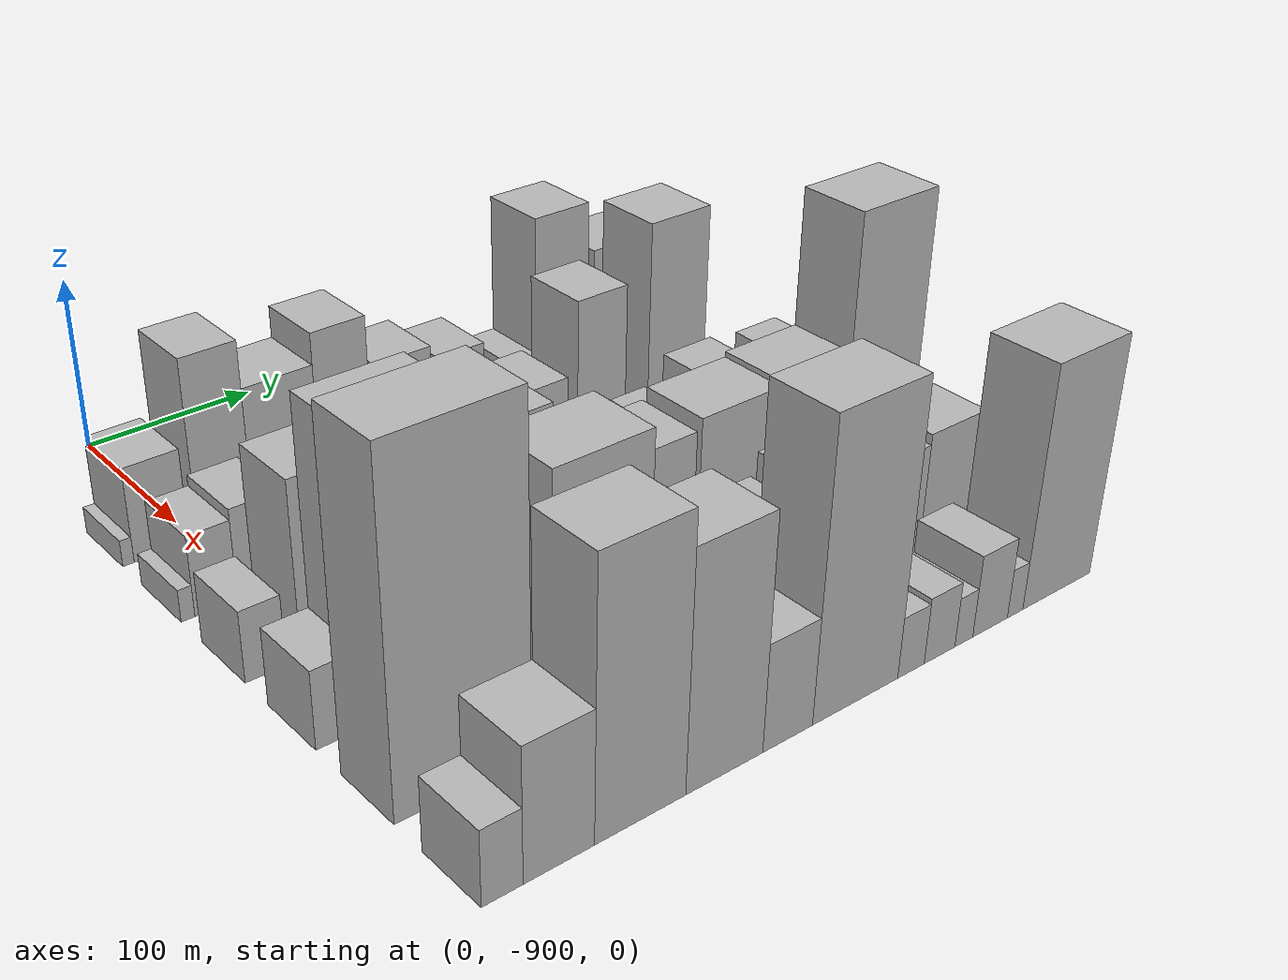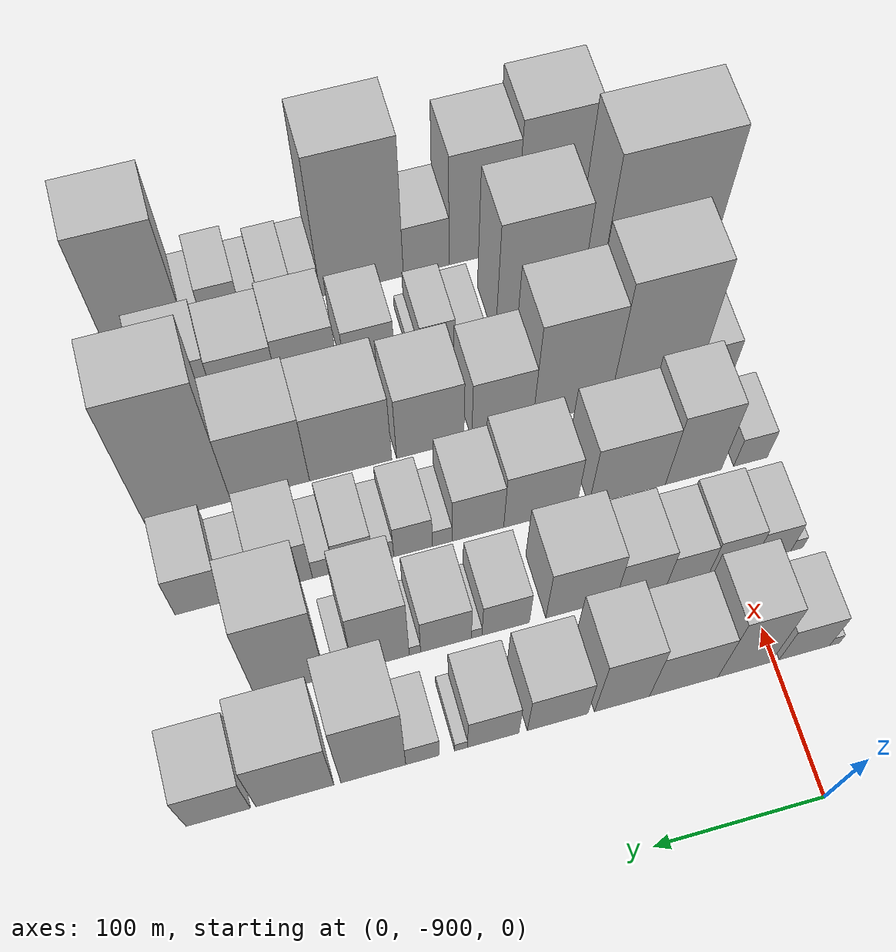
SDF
<sdf version="1.6">
 <world name="default">
  <model name="building_1">
   <static>1</static>
   <pose>100.0000 -936.9196 0 0.000000 0.000000 0.000000</pose>
   <link name="link">
    <pose>0 0 7.50 0 0 0</pose>
    <collision name="collision"><geometry><box><size>40.0000 6.1608 15.0000</size></box></geometry></collision>
    <visual name="visual">
     <cast_shadows>0</cast_shadows>
     <geometry><box><size>40.0000 6.1608 15.0000</size></box></geometry>
     <material>
      <script>
       <uri>model://HANNAS_wall/materials/scripts</uri>
       <uri>model://HANNAS_wall/materials/textures</uri>
       <name>vrc/HANNAS_wall</name>
      </script>
     </material>
    </visual>
   </link>
  </model>
  <model name="building_2">
   <static>1</static>
   <pose>100.0000 -918.4196 0 0.000000 0.000000 0.000000</pose>
   <link name="link">
    <pose>0 0 27.00 0 0 0</pose>
    <collision name="collision"><geometry><box><size>40.0000 30.8391 54.0000</size></box></geometry></collision>
    <visual name="visual">
     <cast_shadows>0</cast_shadows>
     <geometry><box><size>40.0000 30.8391 54.0000</size></box></geometry>
     <material>
      <script>
       <uri>model://HANNAS_wall/materials/scripts</uri>
       <uri>model://HANNAS_wall/materials/textures</uri>
       <name>vrc/HANNAS_wall</name>
      </script>
     </material>
    </visual>
   </link>
  </model>
  <model name="building_3">
   <static>1</static>
   <pose>100.0000 -881.9433 0 0.000000 0.000000 0.000000</pose>
   <link name="link">
    <pose>0 0 51.00 0 0 0</pose>
    <collision name="collision"><geometry><box><size>40.0000 32.1136 102.0000</size></box></geometry></collision>
    <visual name="visual">
     <cast_shadows>0</cast_shadows>
     <geometry><box><size>40.0000 32.1136 102.0000</size></box></geometry>
     <material>
      <script>
       <uri>model://HANNAS_wall/materials/scripts</uri>
       <uri>model://HANNAS_wall/materials/textures</uri>
       <name>vrc/HANNAS_wall</name>
      </script>
     </material>
    </visual>
   </link>
  </model>
  <model name="building_4">
   <static>1</static>
   <pose>100.0000 -845.3050 0 0.000000 0.000000 0.000000</pose>
   <link name="link">
    <pose>0 0 37.50 0 0 0</pose>
    <collision name="collision"><geometry><box><size>40.0000 41.1630 75.0000</size></box></geometry></collision>
    <visual name="visual">
     <cast_shadows>0</cast_shadows>
     <geometry><box><size>40.0000 41.1630 75.0000</size></box></geometry>
     <material>
      <script>
       <uri>model://HANNAS_wall/materials/scripts</uri>
       <uri>model://HANNAS_wall/materials/textures</uri>
       <name>vrc/HANNAS_wall</name>
      </script>
     </material>
    </visual>
   </link>
  </model>
  <model name="building_5">
   <static>1</static>
   <pose>100.0000 -808.3368 0 0.000000 0.000000 0.000000</pose>
   <link name="link">
    <pose>0 0 46.50 0 0 0</pose>
    <collision name="collision"><geometry><box><size>40.0000 32.7734 93.0000</size></box></geometry></collision>
    <visual name="visual">
     <cast_shadows>0</cast_shadows>
     <geometry><box><size>40.0000 32.7734 93.0000</size></box></geometry>
     <material>
      <script>
       <uri>model://HANNAS_wall/materials/scripts</uri>
       <uri>model://HANNAS_wall/materials/textures</uri>
       <name>vrc/HANNAS_wall</name>
      </script>
     </material>
    </visual>
   </link>
  </model>
  <model name="building_6">
   <static>1</static>
   <pose>100.0000 -770.1208 0 0.000000 0.000000 0.000000</pose>
   <link name="link">
    <pose>0 0 31.50 0 0 0</pose>
    <collision name="collision"><geometry><box><size>40.0000 35.6585 63.0000</size></box></geometry></collision>
    <visual name="visual">
     <cast_shadows>0</cast_shadows>
     <geometry><box><size>40.0000 35.6585 63.0000</size></box></geometry>
     <material>
      <script>
       <uri>model://HANNAS_wall/materials/scripts</uri>
       <uri>model://HANNAS_wall/materials/textures</uri>
       <name>vrc/HANNAS_wall</name>
      </script>
     </material>
    </visual>
   </link>
  </model>
  <model name="building_7">
   <static>1</static>
   <pose>100.0000 -732.2711 0 0.000000 0.000000 0.000000</pose>
   <link name="link">
    <pose>0 0 27.00 0 0 0</pose>
    <collision name="collision"><geometry><box><size>40.0000 30.0410 54.0000</size></box></geometry></collision>
    <visual name="visual">
     <cast_shadows>0</cast_shadows>
     <geometry><box><size>40.0000 30.0410 54.0000</size></box></geometry>
     <material>
      <script>
       <uri>model://HANNAS_wall/materials/scripts</uri>
       <uri>model://HANNAS_wall/materials/textures</uri>
       <name>vrc/HANNAS_wall</name>
      </script>
     </material>
    </visual>
   </link>
  </model>
  <model name="building_8">
   <static>1</static>
   <pose>100.0000 -713.5955 0 0.000000 0.000000 0.000000</pose>
   <link name="link">
    <pose>0 0 7.50 0 0 0</pose>
    <collision name="collision"><geometry><box><size>40.0000 7.3101 15.0000</size></box></geometry></collision>
    <visual name="visual">
     <cast_shadows>0</cast_shadows>
     <geometry><box><size>40.0000 7.3101 15.0000</size></box></geometry>
     <material>
      <script>
       <uri>model://HANNAS_wall/materials/scripts</uri>
       <uri>model://HANNAS_wall/materials/textures</uri>
       <name>vrc/HANNAS_wall</name>
      </script>
     </material>
    </visual>
   </link>
  </model>
  <model name="building_9">
   <static>1</static>
   <pose>100.0000 -691.2593 0 0.000000 0.000000 0.000000</pose>
   <link name="link">
    <pose>0 0 18.00 0 0 0</pose>
    <collision name="collision"><geometry><box><size>40.0000 19.3624 36.0000</size></box></geometry></collision>
    <visual name="visual">
     <cast_shadows>0</cast_shadows>
     <geometry><box><size>40.0000 19.3624 36.0000</size></box></geometry>
     <material>
      <script>
       <uri>model://HANNAS_wall/materials/scripts</uri>
       <uri>model://HANNAS_wall/materials/textures</uri>
       <name>vrc/HANNAS_wall</name>
      </script>
     </material>
    </visual>
   </link>
  </model>
  <model name="building_10">
   <static>1</static>
   <pose>100.0000 -662.9509 0 0.000000 0.000000 0.000000</pose>
   <link name="link">
    <pose>0 0 58.50 0 0 0</pose>
    <collision name="collision"><geometry><box><size>40.0000 37.2543 117.0000</size></box></geometry></collision>
    <visual name="visual">
     <cast_shadows>0</cast_shadows>
     <geometry><box><size>40.0000 37.2543 117.0000</size></box></geometry>
     <material>
      <script>
       <uri>model://HANNAS_wall/materials/scripts</uri>
       <uri>model://HANNAS_wall/materials/textures</uri>
       <name>vrc/HANNAS_wall</name>
      </script>
     </material>
    </visual>
   </link>
  </model>
  <model name="building_11">
   <static>1</static>
   <pose>100.0000 -618.1327 0 0.000000 0.000000 0.000000</pose>
   <link name="link">
    <pose>0 0 43.50 0 0 0</pose>
    <collision name="collision"><geometry><box><size>40.0000 44.3821 87.0000</size></box></geometry></collision>
    <visual name="visual">
     <cast_shadows>0</cast_shadows>
     <geometry><box><size>40.0000 44.3821 87.0000</size></box></geometry>
     <material>
      <script>
       <uri>model://HANNAS_wall/materials/scripts</uri>
       <uri>model://HANNAS_wall/materials/textures</uri>
       <name>vrc/HANNAS_wall</name>
      </script>
     </material>
    </visual>
   </link>
  </model>
  <model name="building_12">
   <static>1</static>
   <pose>100.0000 -574.7860 0 0.000000 0.000000 0.000000</pose>
   <link name="link">
    <pose>0 0 31.50 0 0 0</pose>
    <collision name="collision"><geometry><box><size>40.0000 36.3113 63.0000</size></box></geometry></collision>
    <visual name="visual">
     <cast_shadows>0</cast_shadows>
     <geometry><box><size>40.0000 36.3113 63.0000</size></box></geometry>
     <material>
      <script>
       <uri>model://HANNAS_wall/materials/scripts</uri>
       <uri>model://HANNAS_wall/materials/textures</uri>
       <name>vrc/HANNAS_wall</name>
      </script>
     </material>
    </visual>
   </link>
  </model>
  <model name="building_63">
   <static>1</static>
   <pose>160.0000 -936.3375 0 0.000000 0.000000 0.000000</pose>
   <link name="link">
    <pose>0 0 9.00 0 0 0</pose>
    <collision name="collision"><geometry><box><size>40.0000 7.3250 18.0000</size></box></geometry></collision>
    <visual name="visual">
     <cast_shadows>0</cast_shadows>
     <geometry><box><size>40.0000 7.3250 18.0000</size></box></geometry>
     <material>
      <script>
       <uri>model://HANNAS_wall/materials/scripts</uri>
       <uri>model://HANNAS_wall/materials/textures</uri>
       <name>vrc/HANNAS_wall</name>
      </script>
     </material>
    </visual>
   </link>
  </model>
  <model name="building_64">
   <static>1</static>
   <pose>160.0000 -921.1108 0 0.000000 0.000000 0.000000</pose>
   <link name="link">
    <pose>0 0 22.50 0 0 0</pose>
    <collision name="collision"><geometry><box><size>40.0000 23.1285 45.0000</size></box></geometry></collision>
    <visual name="visual">
     <cast_shadows>0</cast_shadows>
     <geometry><box><size>40.0000 23.1285 45.0000</size></box></geometry>
     <material>
      <script>
       <uri>model://HANNAS_wall/materials/scripts</uri>
       <uri>model://HANNAS_wall/materials/textures</uri>
       <name>vrc/HANNAS_wall</name>
      </script>
     </material>
    </visual>
   </link>
  </model>
  <model name="building_65">
   <static>1</static>
   <pose>160.0000 -895.6617 0 0.000000 0.000000 0.000000</pose>
   <link name="link">
    <pose>0 0 25.50 0 0 0</pose>
    <collision name="collision"><geometry><box><size>40.0000 27.7697 51.0000</size></box></geometry></collision>
    <visual name="visual">
     <cast_shadows>0</cast_shadows>
     <geometry><box><size>40.0000 27.7697 51.0000</size></box></geometry>
     <material>
      <script>
       <uri>model://HANNAS_wall/materials/scripts</uri>
       <uri>model://HANNAS_wall/materials/textures</uri>
       <name>vrc/HANNAS_wall</name>
      </script>
     </material>
    </visual>
   </link>
  </model>
  <model name="building_66">
   <static>1</static>
   <pose>160.0000 -868.6997 0 0.000000 0.000000 0.000000</pose>
   <link name="link">
    <pose>0 0 22.50 0 0 0</pose>
    <collision name="collision"><geometry><box><size>40.0000 26.1543 45.0000</size></box></geometry></collision>
    <visual name="visual">
     <cast_shadows>0</cast_shadows>
     <geometry><box><size>40.0000 26.1543 45.0000</size></box></geometry>
     <material>
      <script>
       <uri>model://HANNAS_wall/materials/scripts</uri>
       <uri>model://HANNAS_wall/materials/textures</uri>
       <name>vrc/HANNAS_wall</name>
      </script>
     </material>
    </visual>
   </link>
  </model>
  <model name="building_67">
   <static>1</static>
   <pose>160.0000 -840.0331 0 0.000000 0.000000 0.000000</pose>
   <link name="link">
    <pose>0 0 28.50 0 0 0</pose>
    <collision name="collision"><geometry><box><size>40.0000 31.1788 57.0000</size></box></geometry></collision>
    <visual name="visual">
     <cast_shadows>0</cast_shadows>
     <geometry><box><size>40.0000 31.1788 57.0000</size></box></geometry>
     <material>
      <script>
       <uri>model://HANNAS_wall/materials/scripts</uri>
       <uri>model://HANNAS_wall/materials/textures</uri>
       <name>vrc/HANNAS_wall</name>
      </script>
     </material>
    </visual>
   </link>
  </model>
  <model name="building_68">
   <static>1</static>
   <pose>160.0000 -803.0409 0 0.000000 0.000000 0.000000</pose>
   <link name="link">
    <pose>0 0 37.50 0 0 0</pose>
    <collision name="collision"><geometry><box><size>40.0000 42.8056 75.0000</size></box></geometry></collision>
    <visual name="visual">
     <cast_shadows>0</cast_shadows>
     <geometry><box><size>40.0000 42.8056 75.0000</size></box></geometry>
     <material>
      <script>
       <uri>model://HANNAS_wall/materials/scripts</uri>
       <uri>model://HANNAS_wall/materials/textures</uri>
       <name>vrc/HANNAS_wall</name>
      </script>
     </material>
    </visual>
   </link>
  </model>
  <model name="building_69">
   <static>1</static>
   <pose>160.0000 -757.3831 0 0.000000 0.000000 0.000000</pose>
   <link name="link">
    <pose>0 0 25.50 0 0 0</pose>
    <collision name="collision"><geometry><box><size>40.0000 28.5100 51.0000</size></box></geometry></collision>
    <visual name="visual">
     <cast_shadows>0</cast_shadows>
     <geometry><box><size>40.0000 28.5100 51.0000</size></box></geometry>
     <material>
      <script>
       <uri>model://HANNAS_wall/materials/scripts</uri>
       <uri>model://HANNAS_wall/materials/textures</uri>
       <name>vrc/HANNAS_wall</name>
      </script>
     </material>
    </visual>
   </link>
  </model>
  <model name="building_70">
   <static>1</static>
   <pose>160.0000 -739.9512 0 0.000000 0.000000 0.000000</pose>
   <link name="link">
    <pose>0 0 7.50 0 0 0</pose>
    <collision name="collision"><geometry><box><size>40.0000 6.3539 15.0000</size></box></geometry></collision>
    <visual name="visual">
     <cast_shadows>0</cast_shadows>
     <geometry><box><size>40.0000 6.3539 15.0000</size></box></geometry>
     <material>
      <script>
       <uri>model://HANNAS_wall/materials/scripts</uri>
       <uri>model://HANNAS_wall/materials/textures</uri>
       <name>vrc/HANNAS_wall</name>
      </script>
     </material>
    </visual>
   </link>
  </model>
  <model name="building_71">
   <static>1</static>
   <pose>160.0000 -721.6589 0 0.000000 0.000000 0.000000</pose>
   <link name="link">
    <pose>0 0 27.00 0 0 0</pose>
    <collision name="collision"><geometry><box><size>40.0000 30.2306 54.0000</size></box></geometry></collision>
    <visual name="visual">
     <cast_shadows>0</cast_shadows>
     <geometry><box><size>40.0000 30.2306 54.0000</size></box></geometry>
     <material>
      <script>
       <uri>model://HANNAS_wall/materials/scripts</uri>
       <uri>model://HANNAS_wall/materials/textures</uri>
       <name>vrc/HANNAS_wall</name>
      </script>
     </material>
    </visual>
   </link>
  </model>
  <model name="building_72">
   <static>1</static>
   <pose>160.0000 -703.1885 0 0.000000 0.000000 0.000000</pose>
   <link name="link">
    <pose>0 0 7.50 0 0 0</pose>
    <collision name="collision"><geometry><box><size>40.0000 6.7102 15.0000</size></box></geometry></collision>
    <visual name="visual">
     <cast_shadows>0</cast_shadows>
     <geometry><box><size>40.0000 6.7102 15.0000</size></box></geometry>
     <material>
      <script>
       <uri>model://HANNAS_wall/materials/scripts</uri>
       <uri>model://HANNAS_wall/materials/textures</uri>
       <name>vrc/HANNAS_wall</name>
      </script>
     </material>
    </visual>
   </link>
  </model>
  <model name="building_73">
   <static>1</static>
   <pose>160.0000 -683.2184 0 0.000000 0.000000 0.000000</pose>
   <link name="link">
    <pose>0 0 48.00 0 0 0</pose>
    <collision name="collision"><geometry><box><size>40.0000 33.2300 96.0000</size></box></geometry></collision>
    <visual name="visual">
     <cast_shadows>0</cast_shadows>
     <geometry><box><size>40.0000 33.2300 96.0000</size></box></geometry>
     <material>
      <script>
       <uri>model://HANNAS_wall/materials/scripts</uri>
       <uri>model://HANNAS_wall/materials/textures</uri>
       <name>vrc/HANNAS_wall</name>
      </script>
     </material>
    </visual>
   </link>
  </model>
  <model name="building_74">
   <static>1</static>
   <pose>160.0000 -661.5127 0 0.000000 0.000000 0.000000</pose>
   <link name="link">
    <pose>0 0 10.50 0 0 0</pose>
    <collision name="collision"><geometry><box><size>40.0000 10.1814 21.0000</size></box></geometry></collision>
    <visual name="visual">
     <cast_shadows>0</cast_shadows>
     <geometry><box><size>40.0000 10.1814 21.0000</size></box></geometry>
     <material>
      <script>
       <uri>model://HANNAS_wall/materials/scripts</uri>
       <uri>model://HANNAS_wall/materials/textures</uri>
       <name>vrc/HANNAS_wall</name>
      </script>
     </material>
    </visual>
   </link>
  </model>
  <model name="building_75">
   <static>1</static>
   <pose>160.0000 -629.9643 0 0.000000 0.000000 0.000000</pose>
   <link name="link">
    <pose>0 0 63.00 0 0 0</pose>
    <collision name="collision"><geometry><box><size>40.0000 40.9154 126.0000</size></box></geometry></collision>
    <visual name="visual">
     <cast_shadows>0</cast_shadows>
     <geometry><box><size>40.0000 40.9154 126.0000</size></box></geometry>
     <material>
      <script>
       <uri>model://HANNAS_wall/materials/scripts</uri>
       <uri>model://HANNAS_wall/materials/textures</uri>
       <name>vrc/HANNAS_wall</name>
      </script>
     </material>
    </visual>
   </link>
  </model>
  <model name="building_119">
   <static>1</static>
   <pose>220.0000 -929.2870 0 0.000000 0.000000 0.000000</pose>
   <link name="link">
    <pose>0 0 19.50 0 0 0</pose>
    <collision name="collision"><geometry><box><size>40.0000 21.4259 39.0000</size></box></geometry></collision>
    <visual name="visual">
     <cast_shadows>0</cast_shadows>
     <geometry><box><size>40.0000 21.4259 39.0000</size></box></geometry>
     <material>
      <script>
       <uri>model://HANNAS_wall/materials/scripts</uri>
       <uri>model://HANNAS_wall/materials/textures</uri>
       <name>vrc/HANNAS_wall</name>
      </script>
     </material>
    </visual>
   </link>
  </model>
  <model name="building_120">
   <static>1</static>
   <pose>220.0000 -892.8584 0 0.000000 0.000000 0.000000</pose>
   <link name="link">
    <pose>0 0 48.00 0 0 0</pose>
    <collision name="collision"><geometry><box><size>40.0000 35.4313 96.0000</size></box></geometry></collision>
    <visual name="visual">
     <cast_shadows>0</cast_shadows>
     <geometry><box><size>40.0000 35.4313 96.0000</size></box></geometry>
     <material>
      <script>
       <uri>model://HANNAS_wall/materials/scripts</uri>
       <uri>model://HANNAS_wall/materials/textures</uri>
       <name>vrc/HANNAS_wall</name>
      </script>
     </material>
    </visual>
   </link>
  </model>
  <model name="building_121">
   <static>1</static>
   <pose>220.0000 -851.0493 0 0.000000 0.000000 0.000000</pose>
   <link name="link">
    <pose>0 0 40.50 0 0 0</pose>
    <collision name="collision"><geometry><box><size>40.0000 48.1869 81.0000</size></box></geometry></collision>
    <visual name="visual">
     <cast_shadows>0</cast_shadows>
     <geometry><box><size>40.0000 48.1869 81.0000</size></box></geometry>
     <material>
      <script>
       <uri>model://HANNAS_wall/materials/scripts</uri>
       <uri>model://HANNAS_wall/materials/textures</uri>
       <name>vrc/HANNAS_wall</name>
      </script>
     </material>
    </visual>
   </link>
  </model>
  <model name="building_122">
   <static>1</static>
   <pose>220.0000 -796.4723 0 0.000000 0.000000 0.000000</pose>
   <link name="link">
    <pose>0 0 37.50 0 0 0</pose>
    <collision name="collision"><geometry><box><size>40.0000 44.9671 75.0000</size></box></geometry></collision>
    <visual name="visual">
     <cast_shadows>0</cast_shadows>
     <geometry><box><size>40.0000 44.9671 75.0000</size></box></geometry>
     <material>
      <script>
       <uri>model://HANNAS_wall/materials/scripts</uri>
       <uri>model://HANNAS_wall/materials/textures</uri>
       <name>vrc/HANNAS_wall</name>
      </script>
     </material>
    </visual>
   </link>
  </model>
  <model name="building_123">
   <static>1</static>
   <pose>220.0000 -758.0479 0 0.000000 0.000000 0.000000</pose>
   <link name="link">
    <pose>0 0 31.50 0 0 0</pose>
    <collision name="collision"><geometry><box><size>40.0000 31.8817 63.0000</size></box></geometry></collision>
    <visual name="visual">
     <cast_shadows>0</cast_shadows>
     <geometry><box><size>40.0000 31.8817 63.0000</size></box></geometry>
     <material>
      <script>
       <uri>model://HANNAS_wall/materials/scripts</uri>
       <uri>model://HANNAS_wall/materials/textures</uri>
       <name>vrc/HANNAS_wall</name>
      </script>
     </material>
    </visual>
   </link>
  </model>
  <model name="building_124">
   <static>1</static>
   <pose>220.0000 -736.1623 0 0.000000 0.000000 0.000000</pose>
   <link name="link">
    <pose>0 0 12.00 0 0 0</pose>
    <collision name="collision"><geometry><box><size>40.0000 11.8896 24.0000</size></box></geometry></collision>
    <visual name="visual">
     <cast_shadows>0</cast_shadows>
     <geometry><box><size>40.0000 11.8896 24.0000</size></box></geometry>
     <material>
      <script>
       <uri>model://HANNAS_wall/materials/scripts</uri>
       <uri>model://HANNAS_wall/materials/textures</uri>
       <name>vrc/HANNAS_wall</name>
      </script>
     </material>
    </visual>
   </link>
  </model>
  <model name="building_125">
   <static>1</static>
   <pose>220.0000 -718.4444 0 0.000000 0.000000 0.000000</pose>
   <link name="link">
    <pose>0 0 22.50 0 0 0</pose>
    <collision name="collision"><geometry><box><size>40.0000 23.5461 45.0000</size></box></geometry></collision>
    <visual name="visual">
     <cast_shadows>0</cast_shadows>
     <geometry><box><size>40.0000 23.5461 45.0000</size></box></geometry>
     <material>
      <script>
       <uri>model://HANNAS_wall/materials/scripts</uri>
       <uri>model://HANNAS_wall/materials/textures</uri>
       <name>vrc/HANNAS_wall</name>
      </script>
     </material>
    </visual>
   </link>
  </model>
  <model name="building_126">
   <static>1</static>
   <pose>220.0000 -700.3746 0 0.000000 0.000000 0.000000</pose>
   <link name="link">
    <pose>0 0 13.50 0 0 0</pose>
    <collision name="collision"><geometry><box><size>40.0000 12.5935 27.0000</size></box></geometry></collision>
    <visual name="visual">
     <cast_shadows>0</cast_shadows>
     <geometry><box><size>40.0000 12.5935 27.0000</size></box></geometry>
     <material>
      <script>
       <uri>model://HANNAS_wall/materials/scripts</uri>
       <uri>model://HANNAS_wall/materials/textures</uri>
       <name>vrc/HANNAS_wall</name>
      </script>
     </material>
    </visual>
   </link>
  </model>
  <model name="building_127">
   <static>1</static>
   <pose>220.0000 -682.2973 0 0.000000 0.000000 0.000000</pose>
   <link name="link">
    <pose>0 0 22.50 0 0 0</pose>
    <collision name="collision"><geometry><box><size>40.0000 23.5612 45.0000</size></box></geometry></collision>
    <visual name="visual">
     <cast_shadows>0</cast_shadows>
     <geometry><box><size>40.0000 23.5612 45.0000</size></box></geometry>
     <material>
      <script>
       <uri>model://HANNAS_wall/materials/scripts</uri>
       <uri>model://HANNAS_wall/materials/textures</uri>
       <name>vrc/HANNAS_wall</name>
      </script>
     </material>
    </visual>
   </link>
  </model>
  <model name="building_128">
   <static>1</static>
   <pose>220.0000 -664.0419 0 0.000000 0.000000 0.000000</pose>
   <link name="link">
    <pose>0 0 13.50 0 0 0</pose>
    <collision name="collision"><geometry><box><size>40.0000 12.9495 27.0000</size></box></geometry></collision>
    <visual name="visual">
     <cast_shadows>0</cast_shadows>
     <geometry><box><size>40.0000 12.9495 27.0000</size></box></geometry>
     <material>
      <script>
       <uri>model://HANNAS_wall/materials/scripts</uri>
       <uri>model://HANNAS_wall/materials/textures</uri>
       <name>vrc/HANNAS_wall</name>
      </script>
     </material>
    </visual>
   </link>
  </model>
  <model name="building_129">
   <static>1</static>
   <pose>220.0000 -640.8942 0 0.000000 0.000000 0.000000</pose>
   <link name="link">
    <pose>0 0 30.00 0 0 0</pose>
    <collision name="collision"><geometry><box><size>40.0000 33.3459 60.0000</size></box></geometry></collision>
    <visual name="visual">
     <cast_shadows>0</cast_shadows>
     <geometry><box><size>40.0000 33.3459 60.0000</size></box></geometry>
     <material>
      <script>
       <uri>model://HANNAS_wall/materials/scripts</uri>
       <uri>model://HANNAS_wall/materials/textures</uri>
       <name>vrc/HANNAS_wall</name>
      </script>
     </material>
    </visual>
   </link>
  </model>
  <model name="building_130">
   <static>1</static>
   <pose>220.0000 -614.6839 0 0.000000 0.000000 0.000000</pose>
   <link name="link">
    <pose>0 0 16.50 0 0 0</pose>
    <collision name="collision"><geometry><box><size>40.0000 19.0749 33.0000</size></box></geometry></collision>
    <visual name="visual">
     <cast_shadows>0</cast_shadows>
     <geometry><box><size>40.0000 19.0749 33.0000</size></box></geometry>
     <material>
      <script>
       <uri>model://HANNAS_wall/materials/scripts</uri>
       <uri>model://HANNAS_wall/materials/textures</uri>
       <name>vrc/HANNAS_wall</name>
      </script>
     </material>
    </visual>
   </link>
  </model>
  <model name="building_131">
   <static>1</static>
   <pose>220.0000 -590.3499 0 0.000000 0.000000 0.000000</pose>
   <link name="link">
    <pose>0 0 28.50 0 0 0</pose>
    <collision name="collision"><geometry><box><size>40.0000 29.5930 57.0000</size></box></geometry></collision>
    <visual name="visual">
     <cast_shadows>0</cast_shadows>
     <geometry><box><size>40.0000 29.5930 57.0000</size></box></geometry>
     <material>
      <script>
       <uri>model://HANNAS_wall/materials/scripts</uri>
       <uri>model://HANNAS_wall/materials/textures</uri>
       <name>vrc/HANNAS_wall</name>
      </script>
     </material>
    </visual>
   </link>
  </model>
  <model name="building_175">
   <static>1</static>
   <pose>280.0000 -927.8735 0 0.000000 0.000000 0.000000</pose>
   <link name="link">
    <pose>0 0 21.00 0 0 0</pose>
    <collision name="collision"><geometry><box><size>40.0000 24.2530 42.0000</size></box></geometry></collision>
    <visual name="visual">
     <cast_shadows>0</cast_shadows>
     <geometry><box><size>40.0000 24.2530 42.0000</size></box></geometry>
     <material>
      <script>
       <uri>model://HANNAS_wall/materials/scripts</uri>
       <uri>model://HANNAS_wall/materials/textures</uri>
       <name>vrc/HANNAS_wall</name>
      </script>
     </material>
    </visual>
   </link>
  </model>
  <model name="building_176">
   <static>1</static>
   <pose>280.0000 -887.6400 0 0.000000 0.000000 0.000000</pose>
   <link name="link">
    <pose>0 0 75.00 0 0 0</pose>
    <collision name="collision"><geometry><box><size>40.0000 56.2140 150.0000</size></box></geometry></collision>
    <visual name="visual">
     <cast_shadows>0</cast_shadows>
     <geometry><box><size>40.0000 56.2140 150.0000</size></box></geometry>
     <material>
      <script>
       <uri>model://HANNAS_wall/materials/scripts</uri>
       <uri>model://HANNAS_wall/materials/textures</uri>
       <name>vrc/HANNAS_wall</name>
      </script>
     </material>
    </visual>
   </link>
  </model>
  <model name="building_177">
   <static>1</static>
   <pose>280.0000 -834.8548 0 0.000000 0.000000 0.000000</pose>
   <link name="link">
    <pose>0 0 63.00 0 0 0</pose>
    <collision name="collision"><geometry><box><size>40.0000 49.3564 126.0000</size></box></geometry></collision>
    <visual name="visual">
     <cast_shadows>0</cast_shadows>
     <geometry><box><size>40.0000 49.3564 126.0000</size></box></geometry>
     <material>
      <script>
       <uri>model://HANNAS_wall/materials/scripts</uri>
       <uri>model://HANNAS_wall/materials/textures</uri>
       <name>vrc/HANNAS_wall</name>
      </script>
     </material>
    </visual>
   </link>
  </model>
  <model name="building_178">
   <static>1</static>
   <pose>280.0000 -790.8619 0 0.000000 0.000000 0.000000</pose>
   <link name="link">
    <pose>0 0 37.50 0 0 0</pose>
    <collision name="collision"><geometry><box><size>40.0000 38.6294 75.0000</size></box></geometry></collision>
    <visual name="visual">
     <cast_shadows>0</cast_shadows>
     <geometry><box><size>40.0000 38.6294 75.0000</size></box></geometry>
     <material>
      <script>
       <uri>model://HANNAS_wall/materials/scripts</uri>
       <uri>model://HANNAS_wall/materials/textures</uri>
       <name>vrc/HANNAS_wall</name>
      </script>
     </material>
    </visual>
   </link>
  </model>
  <model name="building_179">
   <static>1</static>
   <pose>280.0000 -745.4751 0 0.000000 0.000000 0.000000</pose>
   <link name="link">
    <pose>0 0 40.50 0 0 0</pose>
    <collision name="collision"><geometry><box><size>40.0000 42.1442 81.0000</size></box></geometry></collision>
    <visual name="visual">
     <cast_shadows>0</cast_shadows>
     <geometry><box><size>40.0000 42.1442 81.0000</size></box></geometry>
     <material>
      <script>
       <uri>model://HANNAS_wall/materials/scripts</uri>
       <uri>model://HANNAS_wall/materials/textures</uri>
       <name>vrc/HANNAS_wall</name>
      </script>
     </material>
    </visual>
   </link>
  </model>
  <model name="building_180">
   <static>1</static>
   <pose>280.0000 -695.8843 0 0.000000 0.000000 0.000000</pose>
   <link name="link">
    <pose>0 0 43.50 0 0 0</pose>
    <collision name="collision"><geometry><box><size>40.0000 51.0375 87.0000</size></box></geometry></collision>
    <visual name="visual">
     <cast_shadows>0</cast_shadows>
     <geometry><box><size>40.0000 51.0375 87.0000</size></box></geometry>
     <material>
      <script>
       <uri>model://HANNAS_wall/materials/scripts</uri>
       <uri>model://HANNAS_wall/materials/textures</uri>
       <name>vrc/HANNAS_wall</name>
      </script>
     </material>
    </visual>
   </link>
  </model>
  <model name="building_181">
   <static>1</static>
   <pose>280.0000 -646.2352 0 0.000000 0.000000 0.000000</pose>
   <link name="link">
    <pose>0 0 45.00 0 0 0</pose>
    <collision name="collision"><geometry><box><size>40.0000 48.2607 90.0000</size></box></geometry></collision>
    <visual name="visual">
     <cast_shadows>0</cast_shadows>
     <geometry><box><size>40.0000 48.2607 90.0000</size></box></geometry>
     <material>
      <script>
       <uri>model://HANNAS_wall/materials/scripts</uri>
       <uri>model://HANNAS_wall/materials/textures</uri>
       <name>vrc/HANNAS_wall</name>
      </script>
     </material>
    </visual>
   </link>
  </model>
  <model name="building_182">
   <static>1</static>
   <pose>280.0000 -595.9173 0 0.000000 0.000000 0.000000</pose>
   <link name="link">
    <pose>0 0 82.50 0 0 0</pose>
    <collision name="collision"><geometry><box><size>40.0000 52.3752 165.0000</size></box></geometry></collision>
    <visual name="visual">
     <cast_shadows>0</cast_shadows>
     <geometry><box><size>40.0000 52.3752 165.0000</size></box></geometry>
     <material>
      <script>
       <uri>model://HANNAS_wall/materials/scripts</uri>
       <uri>model://HANNAS_wall/materials/textures</uri>
       <name>vrc/HANNAS_wall</name>
      </script>
     </material>
    </visual>
   </link>
  </model>
  <model name="building_228">
   <static>1</static>
   <pose>340.0000 -904.6399 0 0.000000 0.000000 0.000000</pose>
   <link name="link">
    <pose>0 0 90.00 0 0 0</pose>
    <collision name="collision"><geometry><box><size>40.0000 70.7202 180.0000</size></box></geometry></collision>
    <visual name="visual">
     <cast_shadows>0</cast_shadows>
     <geometry><box><size>40.0000 70.7202 180.0000</size></box></geometry>
     <material>
      <script>
       <uri>model://HANNAS_wall/materials/scripts</uri>
       <uri>model://HANNAS_wall/materials/textures</uri>
       <name>vrc/HANNAS_wall</name>
      </script>
     </material>
    </visual>
   </link>
  </model>
  <model name="building_229">
   <static>1</static>
   <pose>340.0000 -863.4860 0 0.000000 0.000000 0.000000</pose>
   <link name="link">
    <pose>0 0 13.50 0 0 0</pose>
    <collision name="collision"><geometry><box><size>40.0000 11.5876 27.0000</size></box></geometry></collision>
    <visual name="visual">
     <cast_shadows>0</cast_shadows>
     <geometry><box><size>40.0000 11.5876 27.0000</size></box></geometry>
     <material>
      <script>
       <uri>model://HANNAS_wall/materials/scripts</uri>
       <uri>model://HANNAS_wall/materials/textures</uri>
       <name>vrc/HANNAS_wall</name>
      </script>
     </material>
    </visual>
   </link>
  </model>
  <model name="building_230">
   <static>1</static>
   <pose>340.0000 -830.8940 0 0.000000 0.000000 0.000000</pose>
   <link name="link">
    <pose>0 0 69.00 0 0 0</pose>
    <collision name="collision"><geometry><box><size>40.0000 53.5964 138.0000</size></box></geometry></collision>
    <visual name="visual">
     <cast_shadows>0</cast_shadows>
     <geometry><box><size>40.0000 53.5964 138.0000</size></box></geometry>
     <material>
      <script>
       <uri>model://HANNAS_wall/materials/scripts</uri>
       <uri>model://HANNAS_wall/materials/textures</uri>
       <name>vrc/HANNAS_wall</name>
      </script>
     </material>
    </visual>
   </link>
  </model>
  <model name="building_231">
   <static>1</static>
   <pose>340.0000 -787.0546 0 0.000000 0.000000 0.000000</pose>
   <link name="link">
    <pose>0 0 16.50 0 0 0</pose>
    <collision name="collision"><geometry><box><size>40.0000 18.0823 33.0000</size></box></geometry></collision>
    <visual name="visual">
     <cast_shadows>0</cast_shadows>
     <geometry><box><size>40.0000 18.0823 33.0000</size></box></geometry>
     <material>
      <script>
       <uri>model://HANNAS_wall/materials/scripts</uri>
       <uri>model://HANNAS_wall/materials/textures</uri>
       <name>vrc/HANNAS_wall</name>
      </script>
     </material>
    </visual>
   </link>
  </model>
  <model name="building_232">
   <static>1</static>
   <pose>340.0000 -766.8249 0 0.000000 0.000000 0.000000</pose>
   <link name="link">
    <pose>0 0 21.00 0 0 0</pose>
    <collision name="collision"><geometry><box><size>40.0000 22.3770 42.0000</size></box></geometry></collision>
    <visual name="visual">
     <cast_shadows>0</cast_shadows>
     <geometry><box><size>40.0000 22.3770 42.0000</size></box></geometry>
     <material>
      <script>
       <uri>model://HANNAS_wall/materials/scripts</uri>
       <uri>model://HANNAS_wall/materials/textures</uri>
       <name>vrc/HANNAS_wall</name>
      </script>
     </material>
    </visual>
   </link>
  </model>
  <model name="building_233">
   <static>1</static>
   <pose>340.0000 -752.5726 0 0.000000 0.000000 0.000000</pose>
   <link name="link">
    <pose>0 0 7.50 0 0 0</pose>
    <collision name="collision"><geometry><box><size>40.0000 6.1278 15.0000</size></box></geometry></collision>
    <visual name="visual">
     <cast_shadows>0</cast_shadows>
     <geometry><box><size>40.0000 6.1278 15.0000</size></box></geometry>
     <material>
      <script>
       <uri>model://HANNAS_wall/materials/scripts</uri>
       <uri>model://HANNAS_wall/materials/textures</uri>
       <name>vrc/HANNAS_wall</name>
      </script>
     </material>
    </visual>
   </link>
  </model>
  <model name="building_234">
   <static>1</static>
   <pose>340.0000 -723.6674 0 0.000000 0.000000 0.000000</pose>
   <link name="link">
    <pose>0 0 30.00 0 0 0</pose>
    <collision name="collision"><geometry><box><size>40.0000 31.6826 60.0000</size></box></geometry></collision>
    <visual name="visual">
     <cast_shadows>0</cast_shadows>
     <geometry><box><size>40.0000 31.6826 60.0000</size></box></geometry>
     <material>
      <script>
       <uri>model://HANNAS_wall/materials/scripts</uri>
       <uri>model://HANNAS_wall/materials/textures</uri>
       <name>vrc/HANNAS_wall</name>
      </script>
     </material>
    </visual>
   </link>
  </model>
  <model name="building_235">
   <static>1</static>
   <pose>340.0000 -685.0112 0 0.000000 0.000000 0.000000</pose>
   <link name="link">
    <pose>0 0 36.00 0 0 0</pose>
    <collision name="collision"><geometry><box><size>40.0000 37.6299 72.0000</size></box></geometry></collision>
    <visual name="visual">
     <cast_shadows>0</cast_shadows>
     <geometry><box><size>40.0000 37.6299 72.0000</size></box></geometry>
     <material>
      <script>
       <uri>model://HANNAS_wall/materials/scripts</uri>
       <uri>model://HANNAS_wall/materials/textures</uri>
       <name>vrc/HANNAS_wall</name>
      </script>
     </material>
    </visual>
   </link>
  </model>
  <model name="building_236">
   <static>1</static>
   <pose>340.0000 -646.7329 0 0.000000 0.000000 0.000000</pose>
   <link name="link">
    <pose>0 0 33.00 0 0 0</pose>
    <collision name="collision"><geometry><box><size>40.0000 38.9265 66.0000</size></box></geometry></collision>
    <visual name="visual">
     <cast_shadows>0</cast_shadows>
     <geometry><box><size>40.0000 38.9265 66.0000</size></box></geometry>
     <material>
      <script>
       <uri>model://HANNAS_wall/materials/scripts</uri>
       <uri>model://HANNAS_wall/materials/textures</uri>
       <name>vrc/HANNAS_wall</name>
      </script>
     </material>
    </visual>
   </link>
  </model>
  <model name="building_237">
   <static>1</static>
   <pose>340.0000 -607.5282 0 0.000000 0.000000 0.000000</pose>
   <link name="link">
    <pose>0 0 36.00 0 0 0</pose>
    <collision name="collision"><geometry><box><size>40.0000 39.4829 72.0000</size></box></geometry></collision>
    <visual name="visual">
     <cast_shadows>0</cast_shadows>
     <geometry><box><size>40.0000 39.4829 72.0000</size></box></geometry>
     <material>
      <script>
       <uri>model://HANNAS_wall/materials/scripts</uri>
       <uri>model://HANNAS_wall/materials/textures</uri>
       <name>vrc/HANNAS_wall</name>
      </script>
     </material>
    </visual>
   </link>
  </model>
  <model name="building_285">
   <static>1</static>
   <pose>400.0000 -929.8584 0 0.000000 0.000000 0.000000</pose>
   <link name="link">
    <pose>0 0 19.50 0 0 0</pose>
    <collision name="collision"><geometry><box><size>40.0000 20.2833 39.0000</size></box></geometry></collision>
    <visual name="visual">
     <cast_shadows>0</cast_shadows>
     <geometry><box><size>40.0000 20.2833 39.0000</size></box></geometry>
     <material>
      <script>
       <uri>model://HANNAS_wall/materials/scripts</uri>
       <uri>model://HANNAS_wall/materials/textures</uri>
       <name>vrc/HANNAS_wall</name>
      </script>
     </material>
    </visual>
   </link>
  </model>
  <model name="building_286">
   <static>1</static>
   <pose>400.0000 -901.7274 0 0.000000 0.000000 0.000000</pose>
   <link name="link">
    <pose>0 0 34.50 0 0 0</pose>
    <collision name="collision"><geometry><box><size>40.0000 35.9786 69.0000</size></box></geometry></collision>
    <visual name="visual">
     <cast_shadows>0</cast_shadows>
     <geometry><box><size>40.0000 35.9786 69.0000</size></box></geometry>
     <material>
      <script>
       <uri>model://HANNAS_wall/materials/scripts</uri>
       <uri>model://HANNAS_wall/materials/textures</uri>
       <name>vrc/HANNAS_wall</name>
      </script>
     </material>
    </visual>
   </link>
  </model>
  <model name="building_287">
   <static>1</static>
   <pose>400.0000 -859.3257 0 0.000000 0.000000 0.000000</pose>
   <link name="link">
    <pose>0 0 70.50 0 0 0</pose>
    <collision name="collision"><geometry><box><size>40.0000 48.8249 141.0000</size></box></geometry></collision>
    <visual name="visual">
     <cast_shadows>0</cast_shadows>
     <geometry><box><size>40.0000 48.8249 141.0000</size></box></geometry>
     <material>
      <script>
       <uri>model://HANNAS_wall/materials/scripts</uri>
       <uri>model://HANNAS_wall/materials/textures</uri>
       <name>vrc/HANNAS_wall</name>
      </script>
     </material>
    </visual>
   </link>
  </model>
  <model name="building_288">
   <static>1</static>
   <pose>400.0000 -812.8994 0 0.000000 0.000000 0.000000</pose>
   <link name="link">
    <pose>0 0 61.50 0 0 0</pose>
    <collision name="collision"><geometry><box><size>40.0000 44.0276 123.0000</size></box></geometry></collision>
    <visual name="visual">
     <cast_shadows>0</cast_shadows>
     <geometry><box><size>40.0000 44.0276 123.0000</size></box></geometry>
     <material>
      <script>
       <uri>model://HANNAS_wall/materials/scripts</uri>
       <uri>model://HANNAS_wall/materials/textures</uri>
       <name>vrc/HANNAS_wall</name>
      </script>
     </material>
    </visual>
   </link>
  </model>
  <model name="building_289">
   <static>1</static>
   <pose>400.0000 -775.9320 0 0.000000 0.000000 0.000000</pose>
   <link name="link">
    <pose>0 0 28.50 0 0 0</pose>
    <collision name="collision"><geometry><box><size>40.0000 29.9073 57.0000</size></box></geometry></collision>
    <visual name="visual">
     <cast_shadows>0</cast_shadows>
     <geometry><box><size>40.0000 29.9073 57.0000</size></box></geometry>
     <material>
      <script>
       <uri>model://HANNAS_wall/materials/scripts</uri>
       <uri>model://HANNAS_wall/materials/textures</uri>
       <name>vrc/HANNAS_wall</name>
      </script>
     </material>
    </visual>
   </link>
  </model>
  <model name="building_290">
   <static>1</static>
   <pose>400.0000 -733.8763 0 0.000000 0.000000 0.000000</pose>
   <link name="link">
    <pose>0 0 78.00 0 0 0</pose>
    <collision name="collision"><geometry><box><size>40.0000 54.2040 156.0000</size></box></geometry></collision>
    <visual name="visual">
     <cast_shadows>0</cast_shadows>
     <geometry><box><size>40.0000 54.2040 156.0000</size></box></geometry>
     <material>
      <script>
       <uri>model://HANNAS_wall/materials/scripts</uri>
       <uri>model://HANNAS_wall/materials/textures</uri>
       <name>vrc/HANNAS_wall</name>
      </script>
     </material>
    </visual>
   </link>
  </model>
  <model name="building_291">
   <static>1</static>
   <pose>400.0000 -697.9877 0 0.000000 0.000000 0.000000</pose>
   <link name="link">
    <pose>0 0 16.50 0 0 0</pose>
    <collision name="collision"><geometry><box><size>40.0000 17.5733 33.0000</size></box></geometry></collision>
    <visual name="visual">
     <cast_shadows>0</cast_shadows>
     <geometry><box><size>40.0000 17.5733 33.0000</size></box></geometry>
     <material>
      <script>
       <uri>model://HANNAS_wall/materials/scripts</uri>
       <uri>model://HANNAS_wall/materials/textures</uri>
       <name>vrc/HANNAS_wall</name>
      </script>
     </material>
    </visual>
   </link>
  </model>
  <model name="building_292">
   <static>1</static>
   <pose>400.0000 -678.7583 0 0.000000 0.000000 0.000000</pose>
   <link name="link">
    <pose>0 0 18.00 0 0 0</pose>
    <collision name="collision"><geometry><box><size>40.0000 20.8854 36.0000</size></box></geometry></collision>
    <visual name="visual">
     <cast_shadows>0</cast_shadows>
     <geometry><box><size>40.0000 20.8854 36.0000</size></box></geometry>
     <material>
      <script>
       <uri>model://HANNAS_wall/materials/scripts</uri>
       <uri>model://HANNAS_wall/materials/textures</uri>
       <name>vrc/HANNAS_wall</name>
      </script>
     </material>
    </visual>
   </link>
  </model>
  <model name="building_293">
   <static>1</static>
   <pose>400.0000 -662.0562 0 0.000000 0.000000 0.000000</pose>
   <link name="link">
    <pose>0 0 13.50 0 0 0</pose>
    <collision name="collision"><geometry><box><size>40.0000 12.5187 27.0000</size></box></geometry></collision>
    <visual name="visual">
     <cast_shadows>0</cast_shadows>
     <geometry><box><size>40.0000 12.5187 27.0000</size></box></geometry>
     <material>
      <script>
       <uri>model://HANNAS_wall/materials/scripts</uri>
       <uri>model://HANNAS_wall/materials/textures</uri>
       <name>vrc/HANNAS_wall</name>
      </script>
     </material>
    </visual>
   </link>
  </model>
  <model name="building_294">
   <static>1</static>
   <pose>400.0000 -643.4829 0 0.000000 0.000000 0.000000</pose>
   <link name="link">
    <pose>0 0 22.50 0 0 0</pose>
    <collision name="collision"><geometry><box><size>40.0000 24.6278 45.0000</size></box></geometry></collision>
    <visual name="visual">
     <cast_shadows>0</cast_shadows>
     <geometry><box><size>40.0000 24.6278 45.0000</size></box></geometry>
     <material>
      <script>
       <uri>model://HANNAS_wall/materials/scripts</uri>
       <uri>model://HANNAS_wall/materials/textures</uri>
       <name>vrc/HANNAS_wall</name>
      </script>
     </material>
    </visual>
   </link>
  </model>
  <model name="building_295">
   <static>1</static>
   <pose>400.0000 -625.5412 0 0.000000 0.000000 0.000000</pose>
   <link name="link">
    <pose>0 0 13.50 0 0 0</pose>
    <collision name="collision"><geometry><box><size>40.0000 11.2556 27.0000</size></box></geometry></collision>
    <visual name="visual">
     <cast_shadows>0</cast_shadows>
     <geometry><box><size>40.0000 11.2556 27.0000</size></box></geometry>
     <material>
      <script>
       <uri>model://HANNAS_wall/materials/scripts</uri>
       <uri>model://HANNAS_wall/materials/textures</uri>
       <name>vrc/HANNAS_wall</name>
      </script>
     </material>
    </visual>
   </link>
  </model>
  <model name="building_296">
   <static>1</static>
   <pose>400.0000 -594.6658 0 0.000000 0.000000 0.000000</pose>
   <link name="link">
    <pose>0 0 66.00 0 0 0</pose>
    <collision name="collision"><geometry><box><size>40.0000 50.4954 132.0000</size></box></geometry></collision>
    <visual name="visual">
     <cast_shadows>0</cast_shadows>
     <geometry><box><size>40.0000 50.4954 132.0000</size></box></geometry>
     <material>
      <script>
       <uri>model://HANNAS_wall/materials/scripts</uri>
       <uri>model://HANNAS_wall/materials/textures</uri>
       <name>vrc/HANNAS_wall</name>
      </script>
     </material>
    </visual>
   </link>
  </model>
 </world>
</sdf>
